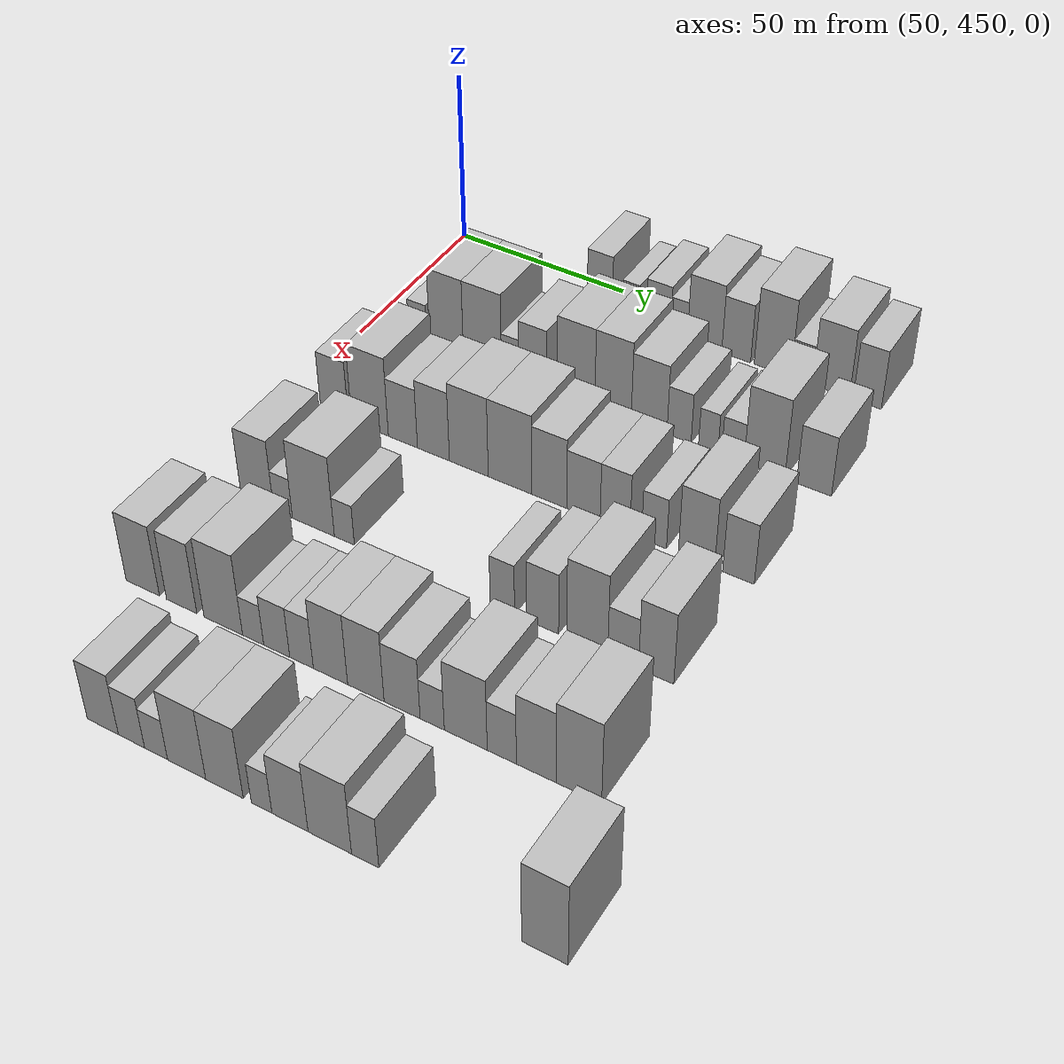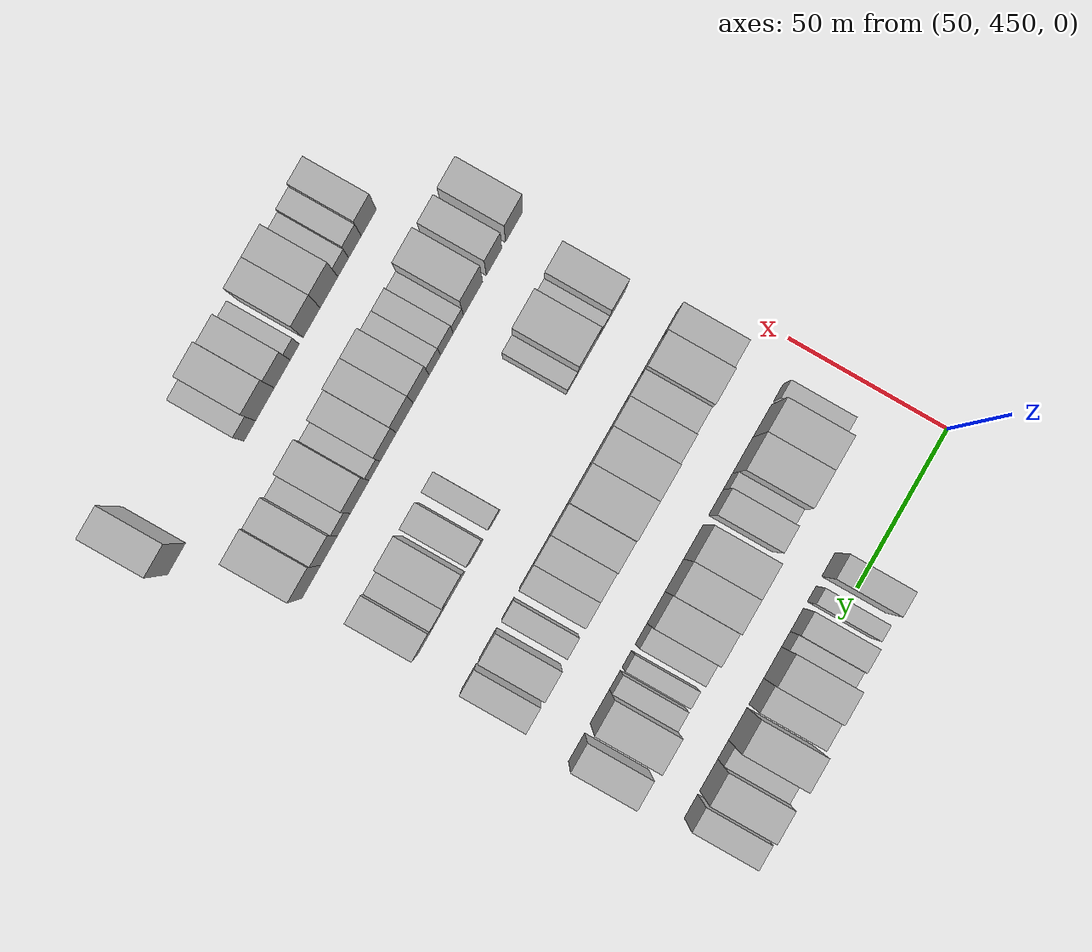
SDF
<sdf version="1.6">
 <world name="default">
  <model name="building_119">
   <static>1</static>
   <pose>50.0000 498.2421 0 0.000000 0.000000 0.000000</pose>
   <link name="link">
    <pose>0 0 9.00 0 0 0</pose>
    <collision name="collision"><geometry><box><size>20.0000 7.4862 18.0000</size></box></geometry></collision>
    <visual name="visual">
     <cast_shadows>0</cast_shadows>
     <geometry><box><size>20.0000 7.4862 18.0000</size></box></geometry>
     <material>
      <script>
       <uri>model://HANNAS_wall/materials/scripts</uri>
       <uri>model://HANNAS_wall/materials/textures</uri>
       <name>vrc/HANNAS_wall</name>
      </script>
     </material>
    </visual>
   </link>
  </model>
  <model name="building_120">
   <static>1</static>
   <pose>50.0000 507.4591 0 0.000000 0.000000 0.000000</pose>
   <link name="link">
    <pose>0 0 6.00 0 0 0</pose>
    <collision name="collision"><geometry><box><size>20.0000 4.9478 12.0000</size></box></geometry></collision>
    <visual name="visual">
     <cast_shadows>0</cast_shadows>
     <geometry><box><size>20.0000 4.9478 12.0000</size></box></geometry>
     <material>
      <script>
       <uri>model://HANNAS_wall/materials/scripts</uri>
       <uri>model://HANNAS_wall/materials/textures</uri>
       <name>vrc/HANNAS_wall</name>
      </script>
     </material>
    </visual>
   </link>
  </model>
  <model name="building_121">
   <static>1</static>
   <pose>50.0000 515.5705 0 0.000000 0.000000 0.000000</pose>
   <link name="link">
    <pose>0 0 7.50 0 0 0</pose>
    <collision name="collision"><geometry><box><size>20.0000 7.2751 15.0000</size></box></geometry></collision>
    <visual name="visual">
     <cast_shadows>0</cast_shadows>
     <geometry><box><size>20.0000 7.2751 15.0000</size></box></geometry>
     <material>
      <script>
       <uri>model://HANNAS_wall/materials/scripts</uri>
       <uri>model://HANNAS_wall/materials/textures</uri>
       <name>vrc/HANNAS_wall</name>
      </script>
     </material>
    </visual>
   </link>
  </model>
  <model name="building_122">
   <static>1</static>
   <pose>50.0000 521.6326 0 0.000000 0.000000 0.000000</pose>
   <link name="link">
    <pose>0 0 6.00 0 0 0</pose>
    <collision name="collision"><geometry><box><size>20.0000 4.8492 12.0000</size></box></geometry></collision>
    <visual name="visual">
     <cast_shadows>0</cast_shadows>
     <geometry><box><size>20.0000 4.8492 12.0000</size></box></geometry>
     <material>
      <script>
       <uri>model://HANNAS_wall/materials/scripts</uri>
       <uri>model://HANNAS_wall/materials/textures</uri>
       <name>vrc/HANNAS_wall</name>
      </script>
     </material>
    </visual>
   </link>
  </model>
  <model name="building_123">
   <static>1</static>
   <pose>50.0000 528.9869 0 0.000000 0.000000 0.000000</pose>
   <link name="link">
    <pose>0 0 10.50 0 0 0</pose>
    <collision name="collision"><geometry><box><size>20.0000 9.8593 21.0000</size></box></geometry></collision>
    <visual name="visual">
     <cast_shadows>0</cast_shadows>
     <geometry><box><size>20.0000 9.8593 21.0000</size></box></geometry>
     <material>
      <script>
       <uri>model://HANNAS_wall/materials/scripts</uri>
       <uri>model://HANNAS_wall/materials/textures</uri>
       <name>vrc/HANNAS_wall</name>
      </script>
     </material>
    </visual>
   </link>
  </model>
  <model name="building_124">
   <static>1</static>
   <pose>50.0000 537.9852 0 0.000000 0.000000 0.000000</pose>
   <link name="link">
    <pose>0 0 9.00 0 0 0</pose>
    <collision name="collision"><geometry><box><size>20.0000 8.1373 18.0000</size></box></geometry></collision>
    <visual name="visual">
     <cast_shadows>0</cast_shadows>
     <geometry><box><size>20.0000 8.1373 18.0000</size></box></geometry>
     <material>
      <script>
       <uri>model://HANNAS_wall/materials/scripts</uri>
       <uri>model://HANNAS_wall/materials/textures</uri>
       <name>vrc/HANNAS_wall</name>
      </script>
     </material>
    </visual>
   </link>
  </model>
  <model name="building_125">
   <static>1</static>
   <pose>50.0000 548.1513 0 0.000000 0.000000 0.000000</pose>
   <link name="link">
    <pose>0 0 12.00 0 0 0</pose>
    <collision name="collision"><geometry><box><size>20.0000 10.1950 24.0000</size></box></geometry></collision>
    <visual name="visual">
     <cast_shadows>0</cast_shadows>
     <geometry><box><size>20.0000 10.1950 24.0000</size></box></geometry>
     <material>
      <script>
       <uri>model://HANNAS_wall/materials/scripts</uri>
       <uri>model://HANNAS_wall/materials/textures</uri>
       <name>vrc/HANNAS_wall</name>
      </script>
     </material>
    </visual>
   </link>
  </model>
  <model name="building_126">
   <static>1</static>
   <pose>50.0000 556.2213 0 0.000000 0.000000 0.000000</pose>
   <link name="link">
    <pose>0 0 6.00 0 0 0</pose>
    <collision name="collision"><geometry><box><size>20.0000 5.9449 12.0000</size></box></geometry></collision>
    <visual name="visual">
     <cast_shadows>0</cast_shadows>
     <geometry><box><size>20.0000 5.9449 12.0000</size></box></geometry>
     <material>
      <script>
       <uri>model://HANNAS_wall/materials/scripts</uri>
       <uri>model://HANNAS_wall/materials/textures</uri>
       <name>vrc/HANNAS_wall</name>
      </script>
     </material>
    </visual>
   </link>
  </model>
  <model name="building_127">
   <static>1</static>
   <pose>50.0000 564.1689 0 0.000000 0.000000 0.000000</pose>
   <link name="link">
    <pose>0 0 10.50 0 0 0</pose>
    <collision name="collision"><geometry><box><size>20.0000 9.9503 21.0000</size></box></geometry></collision>
    <visual name="visual">
     <cast_shadows>0</cast_shadows>
     <geometry><box><size>20.0000 9.9503 21.0000</size></box></geometry>
     <material>
      <script>
       <uri>model://HANNAS_wall/materials/scripts</uri>
       <uri>model://HANNAS_wall/materials/textures</uri>
       <name>vrc/HANNAS_wall</name>
      </script>
     </material>
    </visual>
   </link>
  </model>
  <model name="building_128">
   <static>1</static>
   <pose>50.0000 573.8984 0 0.000000 0.000000 0.000000</pose>
   <link name="link">
    <pose>0 0 9.00 0 0 0</pose>
    <collision name="collision"><geometry><box><size>20.0000 7.5088 18.0000</size></box></geometry></collision>
    <visual name="visual">
     <cast_shadows>0</cast_shadows>
     <geometry><box><size>20.0000 7.5088 18.0000</size></box></geometry>
     <material>
      <script>
       <uri>model://HANNAS_wall/materials/scripts</uri>
       <uri>model://HANNAS_wall/materials/textures</uri>
       <name>vrc/HANNAS_wall</name>
      </script>
     </material>
    </visual>
   </link>
  </model>
  <model name="building_245">
   <static>1</static>
   <pose>85.0000 464.3868 0 0.000000 0.000000 0.000000</pose>
   <link name="link">
    <pose>0 0 6.00 0 0 0</pose>
    <collision name="collision"><geometry><box><size>20.0000 5.4733 12.0000</size></box></geometry></collision>
    <visual name="visual">
     <cast_shadows>0</cast_shadows>
     <geometry><box><size>20.0000 5.4733 12.0000</size></box></geometry>
     <material>
      <script>
       <uri>model://HANNAS_wall/materials/scripts</uri>
       <uri>model://HANNAS_wall/materials/textures</uri>
       <name>vrc/HANNAS_wall</name>
      </script>
     </material>
    </visual>
   </link>
  </model>
  <model name="building_246">
   <static>1</static>
   <pose>85.0000 473.2232 0 0.000000 0.000000 0.000000</pose>
   <link name="link">
    <pose>0 0 12.00 0 0 0</pose>
    <collision name="collision"><geometry><box><size>20.0000 10.1994 24.0000</size></box></geometry></collision>
    <visual name="visual">
     <cast_shadows>0</cast_shadows>
     <geometry><box><size>20.0000 10.1994 24.0000</size></box></geometry>
     <material>
      <script>
       <uri>model://HANNAS_wall/materials/scripts</uri>
       <uri>model://HANNAS_wall/materials/textures</uri>
       <name>vrc/HANNAS_wall</name>
      </script>
     </material>
    </visual>
   </link>
  </model>
  <model name="building_247">
   <static>1</static>
   <pose>85.0000 483.9752 0 0.000000 0.000000 0.000000</pose>
   <link name="link">
    <pose>0 0 12.00 0 0 0</pose>
    <collision name="collision"><geometry><box><size>20.0000 11.3044 24.0000</size></box></geometry></collision>
    <visual name="visual">
     <cast_shadows>0</cast_shadows>
     <geometry><box><size>20.0000 11.3044 24.0000</size></box></geometry>
     <material>
      <script>
       <uri>model://HANNAS_wall/materials/scripts</uri>
       <uri>model://HANNAS_wall/materials/textures</uri>
       <name>vrc/HANNAS_wall</name>
      </script>
     </material>
    </visual>
   </link>
  </model>
  <model name="building_248">
   <static>1</static>
   <pose>85.0000 492.1884 0 0.000000 0.000000 0.000000</pose>
   <link name="link">
    <pose>0 0 6.00 0 0 0</pose>
    <collision name="collision"><geometry><box><size>20.0000 5.1220 12.0000</size></box></geometry></collision>
    <visual name="visual">
     <cast_shadows>0</cast_shadows>
     <geometry><box><size>20.0000 5.1220 12.0000</size></box></geometry>
     <material>
      <script>
       <uri>model://HANNAS_wall/materials/scripts</uri>
       <uri>model://HANNAS_wall/materials/textures</uri>
       <name>vrc/HANNAS_wall</name>
      </script>
     </material>
    </visual>
   </link>
  </model>
  <model name="building_249">
   <static>1</static>
   <pose>85.0000 498.7917 0 0.000000 0.000000 0.000000</pose>
   <link name="link">
    <pose>0 0 9.00 0 0 0</pose>
    <collision name="collision"><geometry><box><size>20.0000 8.0847 18.0000</size></box></geometry></collision>
    <visual name="visual">
     <cast_shadows>0</cast_shadows>
     <geometry><box><size>20.0000 8.0847 18.0000</size></box></geometry>
     <material>
      <script>
       <uri>model://HANNAS_wall/materials/scripts</uri>
       <uri>model://HANNAS_wall/materials/textures</uri>
       <name>vrc/HANNAS_wall</name>
      </script>
     </material>
    </visual>
   </link>
  </model>
  <model name="building_250">
   <static>1</static>
   <pose>85.0000 511.1727 0 0.000000 0.000000 0.000000</pose>
   <link name="link">
    <pose>0 0 12.00 0 0 0</pose>
    <collision name="collision"><geometry><box><size>20.0000 10.6773 24.0000</size></box></geometry></collision>
    <visual name="visual">
     <cast_shadows>0</cast_shadows>
     <geometry><box><size>20.0000 10.6773 24.0000</size></box></geometry>
     <material>
      <script>
       <uri>model://HANNAS_wall/materials/scripts</uri>
       <uri>model://HANNAS_wall/materials/textures</uri>
       <name>vrc/HANNAS_wall</name>
      </script>
     </material>
    </visual>
   </link>
  </model>
  <model name="building_251">
   <static>1</static>
   <pose>85.0000 521.6127 0 0.000000 0.000000 0.000000</pose>
   <link name="link">
    <pose>0 0 12.00 0 0 0</pose>
    <collision name="collision"><geometry><box><size>20.0000 10.2028 24.0000</size></box></geometry></collision>
    <visual name="visual">
     <cast_shadows>0</cast_shadows>
     <geometry><box><size>20.0000 10.2028 24.0000</size></box></geometry>
     <material>
      <script>
       <uri>model://HANNAS_wall/materials/scripts</uri>
       <uri>model://HANNAS_wall/materials/textures</uri>
       <name>vrc/HANNAS_wall</name>
      </script>
     </material>
    </visual>
   </link>
  </model>
  <model name="building_252">
   <static>1</static>
   <pose>85.0000 531.6512 0 0.000000 0.000000 0.000000</pose>
   <link name="link">
    <pose>0 0 10.50 0 0 0</pose>
    <collision name="collision"><geometry><box><size>20.0000 9.8742 21.0000</size></box></geometry></collision>
    <visual name="visual">
     <cast_shadows>0</cast_shadows>
     <geometry><box><size>20.0000 9.8742 21.0000</size></box></geometry>
     <material>
      <script>
       <uri>model://HANNAS_wall/materials/scripts</uri>
       <uri>model://HANNAS_wall/materials/textures</uri>
       <name>vrc/HANNAS_wall</name>
      </script>
     </material>
    </visual>
   </link>
  </model>
  <model name="building_253">
   <static>1</static>
   <pose>85.0000 539.8662 0 0.000000 0.000000 0.000000</pose>
   <link name="link">
    <pose>0 0 7.50 0 0 0</pose>
    <collision name="collision"><geometry><box><size>20.0000 6.5557 15.0000</size></box></geometry></collision>
    <visual name="visual">
     <cast_shadows>0</cast_shadows>
     <geometry><box><size>20.0000 6.5557 15.0000</size></box></geometry>
     <material>
      <script>
       <uri>model://HANNAS_wall/materials/scripts</uri>
       <uri>model://HANNAS_wall/materials/textures</uri>
       <name>vrc/HANNAS_wall</name>
      </script>
     </material>
    </visual>
   </link>
  </model>
  <model name="building_254">
   <static>1</static>
   <pose>85.0000 547.7457 0 0.000000 0.000000 0.000000</pose>
   <link name="link">
    <pose>0 0 6.00 0 0 0</pose>
    <collision name="collision"><geometry><box><size>20.0000 5.2033 12.0000</size></box></geometry></collision>
    <visual name="visual">
     <cast_shadows>0</cast_shadows>
     <geometry><box><size>20.0000 5.2033 12.0000</size></box></geometry>
     <material>
      <script>
       <uri>model://HANNAS_wall/materials/scripts</uri>
       <uri>model://HANNAS_wall/materials/textures</uri>
       <name>vrc/HANNAS_wall</name>
      </script>
     </material>
    </visual>
   </link>
  </model>
  <model name="building_255">
   <static>1</static>
   <pose>85.0000 554.3133 0 0.000000 0.000000 0.000000</pose>
   <link name="link">
    <pose>0 0 6.00 0 0 0</pose>
    <collision name="collision"><geometry><box><size>20.0000 5.9320 12.0000</size></box></geometry></collision>
    <visual name="visual">
     <cast_shadows>0</cast_shadows>
     <geometry><box><size>20.0000 5.9320 12.0000</size></box></geometry>
     <material>
      <script>
       <uri>model://HANNAS_wall/materials/scripts</uri>
       <uri>model://HANNAS_wall/materials/textures</uri>
       <name>vrc/HANNAS_wall</name>
      </script>
     </material>
    </visual>
   </link>
  </model>
  <model name="building_256">
   <static>1</static>
   <pose>85.0000 562.6087 0 0.000000 0.000000 0.000000</pose>
   <link name="link">
    <pose>0 0 12.00 0 0 0</pose>
    <collision name="collision"><geometry><box><size>20.0000 10.6590 24.0000</size></box></geometry></collision>
    <visual name="visual">
     <cast_shadows>0</cast_shadows>
     <geometry><box><size>20.0000 10.6590 24.0000</size></box></geometry>
     <material>
      <script>
       <uri>model://HANNAS_wall/materials/scripts</uri>
       <uri>model://HANNAS_wall/materials/textures</uri>
       <name>vrc/HANNAS_wall</name>
      </script>
     </material>
    </visual>
   </link>
  </model>
  <model name="building_257">
   <static>1</static>
   <pose>85.0000 575.4205 0 0.000000 0.000000 0.000000</pose>
   <link name="link">
    <pose>0 0 9.00 0 0 0</pose>
    <collision name="collision"><geometry><box><size>20.0000 8.9646 18.0000</size></box></geometry></collision>
    <visual name="visual">
     <cast_shadows>0</cast_shadows>
     <geometry><box><size>20.0000 8.9646 18.0000</size></box></geometry>
     <material>
      <script>
       <uri>model://HANNAS_wall/materials/scripts</uri>
       <uri>model://HANNAS_wall/materials/textures</uri>
       <name>vrc/HANNAS_wall</name>
      </script>
     </material>
    </visual>
   </link>
  </model>
  <model name="building_370">
   <static>1</static>
   <pose>120.0000 463.1245 0 0.000000 0.000000 0.000000</pose>
   <link name="link">
    <pose>0 0 9.00 0 0 0</pose>
    <collision name="collision"><geometry><box><size>20.0000 8.2506 18.0000</size></box></geometry></collision>
    <visual name="visual">
     <cast_shadows>0</cast_shadows>
     <geometry><box><size>20.0000 8.2506 18.0000</size></box></geometry>
     <material>
      <script>
       <uri>model://HANNAS_wall/materials/scripts</uri>
       <uri>model://HANNAS_wall/materials/textures</uri>
       <name>vrc/HANNAS_wall</name>
      </script>
     </material>
    </visual>
   </link>
  </model>
  <model name="building_371">
   <static>1</static>
   <pose>120.0000 473.6416 0 0.000000 0.000000 0.000000</pose>
   <link name="link">
    <pose>0 0 12.00 0 0 0</pose>
    <collision name="collision"><geometry><box><size>20.0000 10.7836 24.0000</size></box></geometry></collision>
    <visual name="visual">
     <cast_shadows>0</cast_shadows>
     <geometry><box><size>20.0000 10.7836 24.0000</size></box></geometry>
     <material>
      <script>
       <uri>model://HANNAS_wall/materials/scripts</uri>
       <uri>model://HANNAS_wall/materials/textures</uri>
       <name>vrc/HANNAS_wall</name>
      </script>
     </material>
    </visual>
   </link>
  </model>
  <model name="building_372">
   <static>1</static>
   <pose>120.0000 483.2426 0 0.000000 0.000000 0.000000</pose>
   <link name="link">
    <pose>0 0 9.00 0 0 0</pose>
    <collision name="collision"><geometry><box><size>20.0000 8.4183 18.0000</size></box></geometry></collision>
    <visual name="visual">
     <cast_shadows>0</cast_shadows>
     <geometry><box><size>20.0000 8.4183 18.0000</size></box></geometry>
     <material>
      <script>
       <uri>model://HANNAS_wall/materials/scripts</uri>
       <uri>model://HANNAS_wall/materials/textures</uri>
       <name>vrc/HANNAS_wall</name>
      </script>
     </material>
    </visual>
   </link>
  </model>
  <model name="building_373">
   <static>1</static>
   <pose>120.0000 492.0095 0 0.000000 0.000000 0.000000</pose>
   <link name="link">
    <pose>0 0 10.50 0 0 0</pose>
    <collision name="collision"><geometry><box><size>20.0000 9.1155 21.0000</size></box></geometry></collision>
    <visual name="visual">
     <cast_shadows>0</cast_shadows>
     <geometry><box><size>20.0000 9.1155 21.0000</size></box></geometry>
     <material>
      <script>
       <uri>model://HANNAS_wall/materials/scripts</uri>
       <uri>model://HANNAS_wall/materials/textures</uri>
       <name>vrc/HANNAS_wall</name>
      </script>
     </material>
    </visual>
   </link>
  </model>
  <model name="building_374">
   <static>1</static>
   <pose>120.0000 502.0086 0 0.000000 0.000000 0.000000</pose>
   <link name="link">
    <pose>0 0 12.00 0 0 0</pose>
    <collision name="collision"><geometry><box><size>20.0000 10.8827 24.0000</size></box></geometry></collision>
    <visual name="visual">
     <cast_shadows>0</cast_shadows>
     <geometry><box><size>20.0000 10.8827 24.0000</size></box></geometry>
     <material>
      <script>
       <uri>model://HANNAS_wall/materials/scripts</uri>
       <uri>model://HANNAS_wall/materials/textures</uri>
       <name>vrc/HANNAS_wall</name>
      </script>
     </material>
    </visual>
   </link>
  </model>
  <model name="building_375">
   <static>1</static>
   <pose>120.0000 513.3918 0 0.000000 0.000000 0.000000</pose>
   <link name="link">
    <pose>0 0 12.00 0 0 0</pose>
    <collision name="collision"><geometry><box><size>20.0000 11.8837 24.0000</size></box></geometry></collision>
    <visual name="visual">
     <cast_shadows>0</cast_shadows>
     <geometry><box><size>20.0000 11.8837 24.0000</size></box></geometry>
     <material>
      <script>
       <uri>model://HANNAS_wall/materials/scripts</uri>
       <uri>model://HANNAS_wall/materials/textures</uri>
       <name>vrc/HANNAS_wall</name>
      </script>
     </material>
    </visual>
   </link>
  </model>
  <model name="building_376">
   <static>1</static>
   <pose>120.0000 524.0731 0 0.000000 0.000000 0.000000</pose>
   <link name="link">
    <pose>0 0 10.50 0 0 0</pose>
    <collision name="collision"><geometry><box><size>20.0000 9.4788 21.0000</size></box></geometry></collision>
    <visual name="visual">
     <cast_shadows>0</cast_shadows>
     <geometry><box><size>20.0000 9.4788 21.0000</size></box></geometry>
     <material>
      <script>
       <uri>model://HANNAS_wall/materials/scripts</uri>
       <uri>model://HANNAS_wall/materials/textures</uri>
       <name>vrc/HANNAS_wall</name>
      </script>
     </material>
    </visual>
   </link>
  </model>
  <model name="building_377">
   <static>1</static>
   <pose>120.0000 533.2451 0 0.000000 0.000000 0.000000</pose>
   <link name="link">
    <pose>0 0 9.00 0 0 0</pose>
    <collision name="collision"><geometry><box><size>20.0000 8.8651 18.0000</size></box></geometry></collision>
    <visual name="visual">
     <cast_shadows>0</cast_shadows>
     <geometry><box><size>20.0000 8.8651 18.0000</size></box></geometry>
     <material>
      <script>
       <uri>model://HANNAS_wall/materials/scripts</uri>
       <uri>model://HANNAS_wall/materials/textures</uri>
       <name>vrc/HANNAS_wall</name>
      </script>
     </material>
    </visual>
   </link>
  </model>
  <model name="building_378">
   <static>1</static>
   <pose>120.0000 541.5743 0 0.000000 0.000000 0.000000</pose>
   <link name="link">
    <pose>0 0 9.00 0 0 0</pose>
    <collision name="collision"><geometry><box><size>20.0000 7.7933 18.0000</size></box></geometry></collision>
    <visual name="visual">
     <cast_shadows>0</cast_shadows>
     <geometry><box><size>20.0000 7.7933 18.0000</size></box></geometry>
     <material>
      <script>
       <uri>model://HANNAS_wall/materials/scripts</uri>
       <uri>model://HANNAS_wall/materials/textures</uri>
       <name>vrc/HANNAS_wall</name>
      </script>
     </material>
    </visual>
   </link>
  </model>
  <model name="building_379">
   <static>1</static>
   <pose>120.0000 551.6837 0 0.000000 0.000000 0.000000</pose>
   <link name="link">
    <pose>0 0 7.50 0 0 0</pose>
    <collision name="collision"><geometry><box><size>20.0000 6.4255 15.0000</size></box></geometry></collision>
    <visual name="visual">
     <cast_shadows>0</cast_shadows>
     <geometry><box><size>20.0000 6.4255 15.0000</size></box></geometry>
     <material>
      <script>
       <uri>model://HANNAS_wall/materials/scripts</uri>
       <uri>model://HANNAS_wall/materials/textures</uri>
       <name>vrc/HANNAS_wall</name>
      </script>
     </material>
    </visual>
   </link>
  </model>
  <model name="building_380">
   <static>1</static>
   <pose>120.0000 562.4696 0 0.000000 0.000000 0.000000</pose>
   <link name="link">
    <pose>0 0 10.50 0 0 0</pose>
    <collision name="collision"><geometry><box><size>20.0000 9.1465 21.0000</size></box></geometry></collision>
    <visual name="visual">
     <cast_shadows>0</cast_shadows>
     <geometry><box><size>20.0000 9.1465 21.0000</size></box></geometry>
     <material>
      <script>
       <uri>model://HANNAS_wall/materials/scripts</uri>
       <uri>model://HANNAS_wall/materials/textures</uri>
       <name>vrc/HANNAS_wall</name>
      </script>
     </material>
    </visual>
   </link>
  </model>
  <model name="building_381">
   <static>1</static>
   <pose>120.0000 572.9604 0 0.000000 0.000000 0.000000</pose>
   <link name="link">
    <pose>0 0 9.00 0 0 0</pose>
    <collision name="collision"><geometry><box><size>20.0000 7.8350 18.0000</size></box></geometry></collision>
    <visual name="visual">
     <cast_shadows>0</cast_shadows>
     <geometry><box><size>20.0000 7.8350 18.0000</size></box></geometry>
     <material>
      <script>
       <uri>model://HANNAS_wall/materials/scripts</uri>
       <uri>model://HANNAS_wall/materials/textures</uri>
       <name>vrc/HANNAS_wall</name>
      </script>
     </material>
    </visual>
   </link>
  </model>
  <model name="building_498">
   <static>1</static>
   <pose>155.0000 466.0627 0 0.000000 0.000000 0.000000</pose>
   <link name="link">
    <pose>0 0 10.50 0 0 0</pose>
    <collision name="collision"><geometry><box><size>20.0000 9.3844 21.0000</size></box></geometry></collision>
    <visual name="visual">
     <cast_shadows>0</cast_shadows>
     <geometry><box><size>20.0000 9.3844 21.0000</size></box></geometry>
     <material>
      <script>
       <uri>model://HANNAS_wall/materials/scripts</uri>
       <uri>model://HANNAS_wall/materials/textures</uri>
       <name>vrc/HANNAS_wall</name>
      </script>
     </material>
    </visual>
   </link>
  </model>
  <model name="building_499">
   <static>1</static>
   <pose>155.0000 473.4328 0 0.000000 0.000000 0.000000</pose>
   <link name="link">
    <pose>0 0 6.00 0 0 0</pose>
    <collision name="collision"><geometry><box><size>20.0000 5.3559 12.0000</size></box></geometry></collision>
    <visual name="visual">
     <cast_shadows>0</cast_shadows>
     <geometry><box><size>20.0000 5.3559 12.0000</size></box></geometry>
     <material>
      <script>
       <uri>model://HANNAS_wall/materials/scripts</uri>
       <uri>model://HANNAS_wall/materials/textures</uri>
       <name>vrc/HANNAS_wall</name>
      </script>
     </material>
    </visual>
   </link>
  </model>
  <model name="building_500">
   <static>1</static>
   <pose>155.0000 482.0040 0 0.000000 0.000000 0.000000</pose>
   <link name="link">
    <pose>0 0 12.00 0 0 0</pose>
    <collision name="collision"><geometry><box><size>20.0000 11.7863 24.0000</size></box></geometry></collision>
    <visual name="visual">
     <cast_shadows>0</cast_shadows>
     <geometry><box><size>20.0000 11.7863 24.0000</size></box></geometry>
     <material>
      <script>
       <uri>model://HANNAS_wall/materials/scripts</uri>
       <uri>model://HANNAS_wall/materials/textures</uri>
       <name>vrc/HANNAS_wall</name>
      </script>
     </material>
    </visual>
   </link>
  </model>
  <model name="building_501">
   <static>1</static>
   <pose>155.0000 490.6641 0 0.000000 0.000000 0.000000</pose>
   <link name="link">
    <pose>0 0 6.00 0 0 0</pose>
    <collision name="collision"><geometry><box><size>20.0000 5.5340 12.0000</size></box></geometry></collision>
    <visual name="visual">
     <cast_shadows>0</cast_shadows>
     <geometry><box><size>20.0000 5.5340 12.0000</size></box></geometry>
     <material>
      <script>
       <uri>model://HANNAS_wall/materials/scripts</uri>
       <uri>model://HANNAS_wall/materials/textures</uri>
       <name>vrc/HANNAS_wall</name>
      </script>
     </material>
    </visual>
   </link>
  </model>
  <model name="building_502">
   <static>1</static>
   <pose>155.0000 532.8006 0 0.000000 0.000000 0.000000</pose>
   <link name="link">
    <pose>0 0 7.50 0 0 0</pose>
    <collision name="collision"><geometry><box><size>20.0000 6.2464 15.0000</size></box></geometry></collision>
    <visual name="visual">
     <cast_shadows>0</cast_shadows>
     <geometry><box><size>20.0000 6.2464 15.0000</size></box></geometry>
     <material>
      <script>
       <uri>model://HANNAS_wall/materials/scripts</uri>
       <uri>model://HANNAS_wall/materials/textures</uri>
       <name>vrc/HANNAS_wall</name>
      </script>
     </material>
    </visual>
   </link>
  </model>
  <model name="building_503">
   <static>1</static>
   <pose>155.0000 542.9725 0 0.000000 0.000000 0.000000</pose>
   <link name="link">
    <pose>0 0 9.00 0 0 0</pose>
    <collision name="collision"><geometry><box><size>20.0000 8.0973 18.0000</size></box></geometry></collision>
    <visual name="visual">
     <cast_shadows>0</cast_shadows>
     <geometry><box><size>20.0000 8.0973 18.0000</size></box></geometry>
     <material>
      <script>
       <uri>model://HANNAS_wall/materials/scripts</uri>
       <uri>model://HANNAS_wall/materials/textures</uri>
       <name>vrc/HANNAS_wall</name>
      </script>
     </material>
    </visual>
   </link>
  </model>
  <model name="building_504">
   <static>1</static>
   <pose>155.0000 554.0863 0 0.000000 0.000000 0.000000</pose>
   <link name="link">
    <pose>0 0 12.00 0 0 0</pose>
    <collision name="collision"><geometry><box><size>20.0000 10.1303 24.0000</size></box></geometry></collision>
    <visual name="visual">
     <cast_shadows>0</cast_shadows>
     <geometry><box><size>20.0000 10.1303 24.0000</size></box></geometry>
     <material>
      <script>
       <uri>model://HANNAS_wall/materials/scripts</uri>
       <uri>model://HANNAS_wall/materials/textures</uri>
       <name>vrc/HANNAS_wall</name>
      </script>
     </material>
    </visual>
   </link>
  </model>
  <model name="building_505">
   <static>1</static>
   <pose>155.0000 562.8859 0 0.000000 0.000000 0.000000</pose>
   <link name="link">
    <pose>0 0 7.50 0 0 0</pose>
    <collision name="collision"><geometry><box><size>20.0000 7.4689 15.0000</size></box></geometry></collision>
    <visual name="visual">
     <cast_shadows>0</cast_shadows>
     <geometry><box><size>20.0000 7.4689 15.0000</size></box></geometry>
     <material>
      <script>
       <uri>model://HANNAS_wall/materials/scripts</uri>
       <uri>model://HANNAS_wall/materials/textures</uri>
       <name>vrc/HANNAS_wall</name>
      </script>
     </material>
    </visual>
   </link>
  </model>
  <model name="building_506">
   <static>1</static>
   <pose>155.0000 570.8338 0 0.000000 0.000000 0.000000</pose>
   <link name="link">
    <pose>0 0 10.50 0 0 0</pose>
    <collision name="collision"><geometry><box><size>20.0000 8.4269 21.0000</size></box></geometry></collision>
    <visual name="visual">
     <cast_shadows>0</cast_shadows>
     <geometry><box><size>20.0000 8.4269 21.0000</size></box></geometry>
     <material>
      <script>
       <uri>model://HANNAS_wall/materials/scripts</uri>
       <uri>model://HANNAS_wall/materials/textures</uri>
       <name>vrc/HANNAS_wall</name>
      </script>
     </material>
    </visual>
   </link>
  </model>
  <model name="building_616">
   <static>1</static>
   <pose>190.0000 460.8803 0 0.000000 0.000000 0.000000</pose>
   <link name="link">
    <pose>0 0 10.50 0 0 0</pose>
    <collision name="collision"><geometry><box><size>20.0000 9.4377 21.0000</size></box></geometry></collision>
    <visual name="visual">
     <cast_shadows>0</cast_shadows>
     <geometry><box><size>20.0000 9.4377 21.0000</size></box></geometry>
     <material>
      <script>
       <uri>model://HANNAS_wall/materials/scripts</uri>
       <uri>model://HANNAS_wall/materials/textures</uri>
       <name>vrc/HANNAS_wall</name>
      </script>
     </material>
    </visual>
   </link>
  </model>
  <model name="building_617">
   <static>1</static>
   <pose>190.0000 471.8129 0 0.000000 0.000000 0.000000</pose>
   <link name="link">
    <pose>0 0 10.50 0 0 0</pose>
    <collision name="collision"><geometry><box><size>20.0000 8.4275 21.0000</size></box></geometry></collision>
    <visual name="visual">
     <cast_shadows>0</cast_shadows>
     <geometry><box><size>20.0000 8.4275 21.0000</size></box></geometry>
     <material>
      <script>
       <uri>model://HANNAS_wall/materials/scripts</uri>
       <uri>model://HANNAS_wall/materials/textures</uri>
       <name>vrc/HANNAS_wall</name>
      </script>
     </material>
    </visual>
   </link>
  </model>
  <model name="building_618">
   <static>1</static>
   <pose>190.0000 483.2818 0 0.000000 0.000000 0.000000</pose>
   <link name="link">
    <pose>0 0 12.00 0 0 0</pose>
    <collision name="collision"><geometry><box><size>20.0000 10.5105 24.0000</size></box></geometry></collision>
    <visual name="visual">
     <cast_shadows>0</cast_shadows>
     <geometry><box><size>20.0000 10.5105 24.0000</size></box></geometry>
     <material>
      <script>
       <uri>model://HANNAS_wall/materials/scripts</uri>
       <uri>model://HANNAS_wall/materials/textures</uri>
       <name>vrc/HANNAS_wall</name>
      </script>
     </material>
    </visual>
   </link>
  </model>
  <model name="building_619">
   <static>1</static>
   <pose>190.0000 491.3719 0 0.000000 0.000000 0.000000</pose>
   <link name="link">
    <pose>0 0 6.00 0 0 0</pose>
    <collision name="collision"><geometry><box><size>20.0000 5.6697 12.0000</size></box></geometry></collision>
    <visual name="visual">
     <cast_shadows>0</cast_shadows>
     <geometry><box><size>20.0000 5.6697 12.0000</size></box></geometry>
     <material>
      <script>
       <uri>model://HANNAS_wall/materials/scripts</uri>
       <uri>model://HANNAS_wall/materials/textures</uri>
       <name>vrc/HANNAS_wall</name>
      </script>
     </material>
    </visual>
   </link>
  </model>
  <model name="building_620">
   <static>1</static>
   <pose>190.0000 497.6522 0 0.000000 0.000000 0.000000</pose>
   <link name="link">
    <pose>0 0 7.50 0 0 0</pose>
    <collision name="collision"><geometry><box><size>20.0000 6.8908 15.0000</size></box></geometry></collision>
    <visual name="visual">
     <cast_shadows>0</cast_shadows>
     <geometry><box><size>20.0000 6.8908 15.0000</size></box></geometry>
     <material>
      <script>
       <uri>model://HANNAS_wall/materials/scripts</uri>
       <uri>model://HANNAS_wall/materials/textures</uri>
       <name>vrc/HANNAS_wall</name>
      </script>
     </material>
    </visual>
   </link>
  </model>
  <model name="building_621">
   <static>1</static>
   <pose>190.0000 504.1904 0 0.000000 0.000000 0.000000</pose>
   <link name="link">
    <pose>0 0 7.50 0 0 0</pose>
    <collision name="collision"><geometry><box><size>20.0000 6.1855 15.0000</size></box></geometry></collision>
    <visual name="visual">
     <cast_shadows>0</cast_shadows>
     <geometry><box><size>20.0000 6.1855 15.0000</size></box></geometry>
     <material>
      <script>
       <uri>model://HANNAS_wall/materials/scripts</uri>
       <uri>model://HANNAS_wall/materials/textures</uri>
       <name>vrc/HANNAS_wall</name>
      </script>
     </material>
    </visual>
   </link>
  </model>
  <model name="building_622">
   <static>1</static>
   <pose>190.0000 511.7117 0 0.000000 0.000000 0.000000</pose>
   <link name="link">
    <pose>0 0 10.50 0 0 0</pose>
    <collision name="collision"><geometry><box><size>20.0000 8.8571 21.0000</size></box></geometry></collision>
    <visual name="visual">
     <cast_shadows>0</cast_shadows>
     <geometry><box><size>20.0000 8.8571 21.0000</size></box></geometry>
     <material>
      <script>
       <uri>model://HANNAS_wall/materials/scripts</uri>
       <uri>model://HANNAS_wall/materials/textures</uri>
       <name>vrc/HANNAS_wall</name>
      </script>
     </material>
    </visual>
   </link>
  </model>
  <model name="building_623">
   <static>1</static>
   <pose>190.0000 520.7618 0 0.000000 0.000000 0.000000</pose>
   <link name="link">
    <pose>0 0 10.50 0 0 0</pose>
    <collision name="collision"><geometry><box><size>20.0000 9.2430 21.0000</size></box></geometry></collision>
    <visual name="visual">
     <cast_shadows>0</cast_shadows>
     <geometry><box><size>20.0000 9.2430 21.0000</size></box></geometry>
     <material>
      <script>
       <uri>model://HANNAS_wall/materials/scripts</uri>
       <uri>model://HANNAS_wall/materials/textures</uri>
       <name>vrc/HANNAS_wall</name>
      </script>
     </material>
    </visual>
   </link>
  </model>
  <model name="building_624">
   <static>1</static>
   <pose>190.0000 529.8713 0 0.000000 0.000000 0.000000</pose>
   <link name="link">
    <pose>0 0 9.00 0 0 0</pose>
    <collision name="collision"><geometry><box><size>20.0000 8.9761 18.0000</size></box></geometry></collision>
    <visual name="visual">
     <cast_shadows>0</cast_shadows>
     <geometry><box><size>20.0000 8.9761 18.0000</size></box></geometry>
     <material>
      <script>
       <uri>model://HANNAS_wall/materials/scripts</uri>
       <uri>model://HANNAS_wall/materials/textures</uri>
       <name>vrc/HANNAS_wall</name>
      </script>
     </material>
    </visual>
   </link>
  </model>
  <model name="building_625">
   <static>1</static>
   <pose>190.0000 537.3332 0 0.000000 0.000000 0.000000</pose>
   <link name="link">
    <pose>0 0 6.00 0 0 0</pose>
    <collision name="collision"><geometry><box><size>20.0000 5.9476 12.0000</size></box></geometry></collision>
    <visual name="visual">
     <cast_shadows>0</cast_shadows>
     <geometry><box><size>20.0000 5.9476 12.0000</size></box></geometry>
     <material>
      <script>
       <uri>model://HANNAS_wall/materials/scripts</uri>
       <uri>model://HANNAS_wall/materials/textures</uri>
       <name>vrc/HANNAS_wall</name>
      </script>
     </material>
    </visual>
   </link>
  </model>
  <model name="building_626">
   <static>1</static>
   <pose>190.0000 545.4879 0 0.000000 0.000000 0.000000</pose>
   <link name="link">
    <pose>0 0 10.50 0 0 0</pose>
    <collision name="collision"><geometry><box><size>20.0000 10.3617 21.0000</size></box></geometry></collision>
    <visual name="visual">
     <cast_shadows>0</cast_shadows>
     <geometry><box><size>20.0000 10.3617 21.0000</size></box></geometry>
     <material>
      <script>
       <uri>model://HANNAS_wall/materials/scripts</uri>
       <uri>model://HANNAS_wall/materials/textures</uri>
       <name>vrc/HANNAS_wall</name>
      </script>
     </material>
    </visual>
   </link>
  </model>
  <model name="building_627">
   <static>1</static>
   <pose>190.0000 554.1245 0 0.000000 0.000000 0.000000</pose>
   <link name="link">
    <pose>0 0 7.50 0 0 0</pose>
    <collision name="collision"><geometry><box><size>20.0000 6.9116 15.0000</size></box></geometry></collision>
    <visual name="visual">
     <cast_shadows>0</cast_shadows>
     <geometry><box><size>20.0000 6.9116 15.0000</size></box></geometry>
     <material>
      <script>
       <uri>model://HANNAS_wall/materials/scripts</uri>
       <uri>model://HANNAS_wall/materials/textures</uri>
       <name>vrc/HANNAS_wall</name>
      </script>
     </material>
    </visual>
   </link>
  </model>
  <model name="building_628">
   <static>1</static>
   <pose>190.0000 562.2257 0 0.000000 0.000000 0.000000</pose>
   <link name="link">
    <pose>0 0 10.50 0 0 0</pose>
    <collision name="collision"><geometry><box><size>20.0000 9.2909 21.0000</size></box></geometry></collision>
    <visual name="visual">
     <cast_shadows>0</cast_shadows>
     <geometry><box><size>20.0000 9.2909 21.0000</size></box></geometry>
     <material>
      <script>
       <uri>model://HANNAS_wall/materials/scripts</uri>
       <uri>model://HANNAS_wall/materials/textures</uri>
       <name>vrc/HANNAS_wall</name>
      </script>
     </material>
    </visual>
   </link>
  </model>
  <model name="building_629">
   <static>1</static>
   <pose>190.0000 572.0744 0 0.000000 0.000000 0.000000</pose>
   <link name="link">
    <pose>0 0 12.00 0 0 0</pose>
    <collision name="collision"><geometry><box><size>20.0000 10.4065 24.0000</size></box></geometry></collision>
    <visual name="visual">
     <cast_shadows>0</cast_shadows>
     <geometry><box><size>20.0000 10.4065 24.0000</size></box></geometry>
     <material>
      <script>
       <uri>model://HANNAS_wall/materials/scripts</uri>
       <uri>model://HANNAS_wall/materials/textures</uri>
       <name>vrc/HANNAS_wall</name>
      </script>
     </material>
    </visual>
   </link>
  </model>
  <model name="building_742">
   <static>1</static>
   <pose>225.0000 479.3699 0 0.000000 0.000000 0.000000</pose>
   <link name="link">
    <pose>0 0 9.00 0 0 0</pose>
    <collision name="collision"><geometry><box><size>20.0000 8.3110 18.0000</size></box></geometry></collision>
    <visual name="visual">
     <cast_shadows>0</cast_shadows>
     <geometry><box><size>20.0000 8.3110 18.0000</size></box></geometry>
     <material>
      <script>
       <uri>model://HANNAS_wall/materials/scripts</uri>
       <uri>model://HANNAS_wall/materials/textures</uri>
       <name>vrc/HANNAS_wall</name>
      </script>
     </material>
    </visual>
   </link>
  </model>
  <model name="building_743">
   <static>1</static>
   <pose>225.0000 486.9603 0 0.000000 0.000000 0.000000</pose>
   <link name="link">
    <pose>0 0 7.50 0 0 0</pose>
    <collision name="collision"><geometry><box><size>20.0000 6.8696 15.0000</size></box></geometry></collision>
    <visual name="visual">
     <cast_shadows>0</cast_shadows>
     <geometry><box><size>20.0000 6.8696 15.0000</size></box></geometry>
     <material>
      <script>
       <uri>model://HANNAS_wall/materials/scripts</uri>
       <uri>model://HANNAS_wall/materials/textures</uri>
       <name>vrc/HANNAS_wall</name>
      </script>
     </material>
    </visual>
   </link>
  </model>
  <model name="building_744">
   <static>1</static>
   <pose>225.0000 493.3793 0 0.000000 0.000000 0.000000</pose>
   <link name="link">
    <pose>0 0 6.00 0 0 0</pose>
    <collision name="collision"><geometry><box><size>20.0000 5.9685 12.0000</size></box></geometry></collision>
    <visual name="visual">
     <cast_shadows>0</cast_shadows>
     <geometry><box><size>20.0000 5.9685 12.0000</size></box></geometry>
     <material>
      <script>
       <uri>model://HANNAS_wall/materials/scripts</uri>
       <uri>model://HANNAS_wall/materials/textures</uri>
       <name>vrc/HANNAS_wall</name>
      </script>
     </material>
    </visual>
   </link>
  </model>
  <model name="building_745">
   <static>1</static>
   <pose>225.0000 501.2236 0 0.000000 0.000000 0.000000</pose>
   <link name="link">
    <pose>0 0 10.50 0 0 0</pose>
    <collision name="collision"><geometry><box><size>20.0000 9.7200 21.0000</size></box></geometry></collision>
    <visual name="visual">
     <cast_shadows>0</cast_shadows>
     <geometry><box><size>20.0000 9.7200 21.0000</size></box></geometry>
     <material>
      <script>
       <uri>model://HANNAS_wall/materials/scripts</uri>
       <uri>model://HANNAS_wall/materials/textures</uri>
       <name>vrc/HANNAS_wall</name>
      </script>
     </material>
    </visual>
   </link>
  </model>
  <model name="building_746">
   <static>1</static>
   <pose>225.0000 510.7799 0 0.000000 0.000000 0.000000</pose>
   <link name="link">
    <pose>0 0 10.50 0 0 0</pose>
    <collision name="collision"><geometry><box><size>20.0000 9.3925 21.0000</size></box></geometry></collision>
    <visual name="visual">
     <cast_shadows>0</cast_shadows>
     <geometry><box><size>20.0000 9.3925 21.0000</size></box></geometry>
     <material>
      <script>
       <uri>model://HANNAS_wall/materials/scripts</uri>
       <uri>model://HANNAS_wall/materials/textures</uri>
       <name>vrc/HANNAS_wall</name>
      </script>
     </material>
    </visual>
   </link>
  </model>
  <model name="building_747">
   <static>1</static>
   <pose>225.0000 520.0125 0 0.000000 0.000000 0.000000</pose>
   <link name="link">
    <pose>0 0 6.00 0 0 0</pose>
    <collision name="collision"><geometry><box><size>20.0000 5.0727 12.0000</size></box></geometry></collision>
    <visual name="visual">
     <cast_shadows>0</cast_shadows>
     <geometry><box><size>20.0000 5.0727 12.0000</size></box></geometry>
     <material>
      <script>
       <uri>model://HANNAS_wall/materials/scripts</uri>
       <uri>model://HANNAS_wall/materials/textures</uri>
       <name>vrc/HANNAS_wall</name>
      </script>
     </material>
    </visual>
   </link>
  </model>
  <model name="building_748">
   <static>1</static>
   <pose>225.0000 526.9166 0 0.000000 0.000000 0.000000</pose>
   <link name="link">
    <pose>0 0 9.00 0 0 0</pose>
    <collision name="collision"><geometry><box><size>20.0000 8.7356 18.0000</size></box></geometry></collision>
    <visual name="visual">
     <cast_shadows>0</cast_shadows>
     <geometry><box><size>20.0000 8.7356 18.0000</size></box></geometry>
     <material>
      <script>
       <uri>model://HANNAS_wall/materials/scripts</uri>
       <uri>model://HANNAS_wall/materials/textures</uri>
       <name>vrc/HANNAS_wall</name>
      </script>
     </material>
    </visual>
   </link>
  </model>
  <model name="building_749">
   <static>1</static>
   <pose>225.0000 536.4414 0 0.000000 0.000000 0.000000</pose>
   <link name="link">
    <pose>0 0 10.50 0 0 0</pose>
    <collision name="collision"><geometry><box><size>20.0000 10.3141 21.0000</size></box></geometry></collision>
    <visual name="visual">
     <cast_shadows>0</cast_shadows>
     <geometry><box><size>20.0000 10.3141 21.0000</size></box></geometry>
     <material>
      <script>
       <uri>model://HANNAS_wall/materials/scripts</uri>
       <uri>model://HANNAS_wall/materials/textures</uri>
       <name>vrc/HANNAS_wall</name>
      </script>
     </material>
    </visual>
   </link>
  </model>
  <model name="building_750">
   <static>1</static>
   <pose>225.0000 544.7823 0 0.000000 0.000000 0.000000</pose>
   <link name="link">
    <pose>0 0 7.50 0 0 0</pose>
    <collision name="collision"><geometry><box><size>20.0000 6.3676 15.0000</size></box></geometry></collision>
    <visual name="visual">
     <cast_shadows>0</cast_shadows>
     <geometry><box><size>20.0000 6.3676 15.0000</size></box></geometry>
     <material>
      <script>
       <uri>model://HANNAS_wall/materials/scripts</uri>
       <uri>model://HANNAS_wall/materials/textures</uri>
       <name>vrc/HANNAS_wall</name>
      </script>
     </material>
    </visual>
   </link>
  </model>
  <model name="building_751">
   <static>1</static>
   <pose>225.0000 584.8878 0 0.000000 0.000000 0.000000</pose>
   <link name="link">
    <pose>0 0 12.00 0 0 0</pose>
    <collision name="collision"><geometry><box><size>20.0000 9.9478 24.0000</size></box></geometry></collision>
    <visual name="visual">
     <cast_shadows>0</cast_shadows>
     <geometry><box><size>20.0000 9.9478 24.0000</size></box></geometry>
     <material>
      <script>
       <uri>model://HANNAS_wall/materials/scripts</uri>
       <uri>model://HANNAS_wall/materials/textures</uri>
       <name>vrc/HANNAS_wall</name>
      </script>
     </material>
    </visual>
   </link>
  </model>
 </world>
</sdf>
